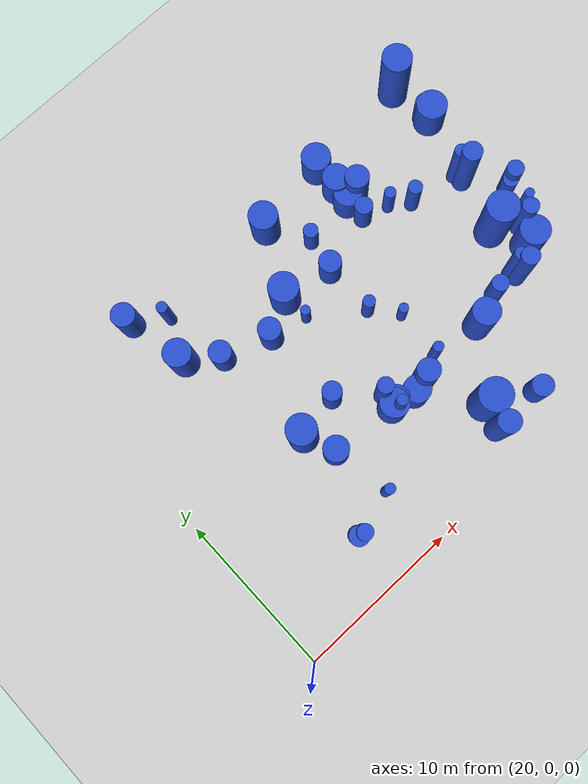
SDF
<sdf version="1.6">
 <world name="default">
  <model name="ground_plane">
   <static>1</static>
   <link name="link">
    <collision name="collision">
     <geometry><plane><normal>0 0 1</normal><size>100 100</size></plane></geometry>
     <surface><friction><ode><mu>100</mu><mu2>50</mu2></ode></friction></surface>
    </collision>
    <visual name="visual">
     <cast_shadows>0</cast_shadows>
     <geometry><plane><normal>0 0 1</normal><size>100 100</size></plane></geometry>
     <material>
      <script><uri>file://media/materials/scripts/gazebo.material</uri><name>Gazebo/Grey</name></script>
     </material>
    </visual>
   </link>
  </model>
  <model name="4">
   <static>0</static>
   <link name="link">
    <inertial>
     <mass>2</mass>
     <inertia><ixx>3.99199</ixx><ixy>0</ixy><ixz>0</ixz><iyy>3.99199</iyy><iyz>0</iyz><izz>0.466161</izz></inertia>
    </inertial>
    <collision name="collision">
     <geometry><cylinder><length>4.74905</length><radius>0.68276</radius></cylinder></geometry>
     <surface><contact><collide_without_contact>1</collide_without_contact></contact></surface>
    </collision>
    <visual name="visual">
     <geometry><cylinder><length>4.74905</length><radius>0.68276</radius></cylinder></geometry>
     <material>
      <script><uri>file://media/materials/scripts/gazebo.material</uri><name>Gazebo/Blue</name></script>
     </material>
    </visual>
    <gravity>0</gravity>
   </link>
   <pose>36.5583 2.27425 2.37452 0 -0 0</pose>
  </model>
  <model name="10">
   <static>0</static>
   <link name="link">
    <inertial>
     <mass>2</mass>
     <inertia>
      <ixx>0.892334</ixx>
      <ixy>0</ixy>
      <ixz>0</ixz>
      <iyy>0.892334</iyy>
      <iyz>0</iyz>
      <izz>0.0903005</izz>
     </inertia>
    </inertial>
    <collision name="collision">
     <geometry><cylinder><length>2.25457</length><radius>0.3005</radius></cylinder></geometry>
     <surface><contact><collide_without_contact>1</collide_without_contact></contact></surface>
    </collision>
    <visual name="visual">
     <geometry><cylinder><length>2.25457</length><radius>0.3005</radius></cylinder></geometry>
     <material>
      <script><uri>file://media/materials/scripts/gazebo.material</uri><name>Gazebo/Blue</name></script>
     </material>
    </visual>
    <gravity>0</gravity>
   </link>
   <pose>37.2761 10.9514 1.12729 0 -0 0</pose>
  </model>
  <model name="13">
   <static>0</static>
   <link name="link">
    <inertial>
     <mass>2</mass>
     <inertia><ixx>1.70434</ixx><ixy>0</ixy><ixz>0</ixz><iyy>1.70434</iyy><iyz>0</iyz><izz>0.588243</izz></inertia>
    </inertial>
    <collision name="collision">
     <geometry><cylinder><length>2.90883</length><radius>0.76697</radius></cylinder></geometry>
     <surface><contact><collide_without_contact>1</collide_without_contact></contact></surface>
    </collision>
    <visual name="visual">
     <geometry><cylinder><length>2.90883</length><radius>0.76697</radius></cylinder></geometry>
     <material>
      <script><uri>file://media/materials/scripts/gazebo.material</uri><name>Gazebo/Blue</name></script>
     </material>
    </visual>
    <gravity>0</gravity>
   </link>
   <pose>28.8619 7.69367 1.45441 0 -0 0</pose>
  </model>
  <model name="17">
   <static>0</static>
   <link name="link">
    <inertial>
     <mass>2</mass>
     <inertia><ixx>2.81626</ixx><ixy>0</ixy><ixz>0</ixz><iyy>2.81626</iyy><iyz>0</iyz><izz>0.482913</izz></inertia>
    </inertial>
    <collision name="collision">
     <geometry><cylinder><length>3.9305</length><radius>0.694919</radius></cylinder></geometry>
     <surface><contact><collide_without_contact>1</collide_without_contact></contact></surface>
    </collision>
    <visual name="visual">
     <geometry><cylinder><length>3.9305</length><radius>0.694919</radius></cylinder></geometry>
     <material>
      <script><uri>file://media/materials/scripts/gazebo.material</uri><name>Gazebo/Blue</name></script>
     </material>
    </visual>
    <gravity>0</gravity>
   </link>
   <pose>35.5044 7.28574 1.96525 0 -0 0</pose>
  </model>
  <model name="20">
   <static>0</static>
   <link name="link">
    <inertial>
     <mass>2</mass>
     <inertia><ixx>1.70834</ixx><ixy>0</ixy><ixz>0</ixz><iyy>1.70834</iyy><iyz>0</iyz><izz>0.487048</izz></inertia>
    </inertial>
    <collision name="collision">
     <geometry><cylinder><length>2.96461</length><radius>0.697888</radius></cylinder></geometry>
     <surface><contact><collide_without_contact>1</collide_without_contact></contact></surface>
    </collision>
    <visual name="visual">
     <geometry><cylinder><length>2.96461</length><radius>0.697888</radius></cylinder></geometry>
     <material>
      <script><uri>file://media/materials/scripts/gazebo.material</uri><name>Gazebo/Blue</name></script>
     </material>
    </visual>
    <gravity>0</gravity>
   </link>
   <pose>30.726 15.2064 1.4823 0 -0 0</pose>
  </model>
  <model name="22">
   <static>0</static>
   <link name="link">
    <inertial>
     <mass>2</mass>
     <inertia><ixx>1.35363</ixx><ixy>0</ixy><ixz>0</ixz><iyy>1.35363</iyy><iyz>0</iyz><izz>0.709963</izz></inertia>
    </inertial>
    <collision name="collision">
     <geometry><cylinder><length>2.44783</length><radius>0.842593</radius></cylinder></geometry>
     <surface><contact><collide_without_contact>1</collide_without_contact></contact></surface>
    </collision>
    <visual name="visual">
     <geometry><cylinder><length>2.44783</length><radius>0.842593</radius></cylinder></geometry>
     <material>
      <script><uri>file://media/materials/scripts/gazebo.material</uri><name>Gazebo/Blue</name></script>
     </material>
    </visual>
    <gravity>0</gravity>
   </link>
   <pose>39.8297 19.3697 1.22391 0 -0 0</pose>
  </model>
  <model name="33">
   <static>0</static>
   <link name="link">
    <inertial>
     <mass>2</mass>
     <inertia><ixx>3.79607</ixx><ixy>0</ixy><ixz>0</ixz><iyy>3.79607</iyy><iyz>0</iyz><izz>0.307208</izz></inertia>
    </inertial>
    <collision name="collision">
     <geometry><cylinder><length>4.67491</length><radius>0.554264</radius></cylinder></geometry>
     <surface><contact><collide_without_contact>1</collide_without_contact></contact></surface>
    </collision>
    <visual name="visual">
     <geometry><cylinder><length>4.67491</length><radius>0.554264</radius></cylinder></geometry>
     <material>
      <script><uri>file://media/materials/scripts/gazebo.material</uri><name>Gazebo/Blue</name></script>
     </material>
    </visual>
    <gravity>0</gravity>
   </link>
   <pose>43.9821 7.96842 2.33746 0 -0 0</pose>
  </model>
  <model name="34">
   <static>0</static>
   <link name="link">
    <inertial>
     <mass>2</mass>
     <inertia><ixx>2.43561</ixx><ixy>0</ixy><ixz>0</ixz><iyy>2.43561</iyy><iyz>0</iyz><izz>0.710721</izz></inertia>
    </inertial>
    <collision name="collision">
     <geometry><cylinder><length>3.53292</length><radius>0.843043</radius></cylinder></geometry>
     <surface><contact><collide_without_contact>1</collide_without_contact></contact></surface>
    </collision>
    <visual name="visual">
     <geometry><cylinder><length>3.53292</length><radius>0.843043</radius></cylinder></geometry>
     <material>
      <script><uri>file://media/materials/scripts/gazebo.material</uri><name>Gazebo/Blue</name></script>
     </material>
    </visual>
    <gravity>0</gravity>
   </link>
   <pose>25.9964 17.6182 1.76646 0 -0 0</pose>
  </model>
  <model name="37">
   <static>0</static>
   <link name="link">
    <inertial>
     <mass>2</mass>
     <inertia><ixx>4.51841</ixx><ixy>0</ixy><ixz>0</ixz><iyy>4.51841</iyy><iyz>0</iyz><izz>0.944518</izz></inertia>
    </inertial>
    <collision name="collision">
     <geometry><cylinder><length>4.92716</length><radius>0.971863</radius></cylinder></geometry>
     <surface><contact><collide_without_contact>1</collide_without_contact></contact></surface>
    </collision>
    <visual name="visual">
     <geometry><cylinder><length>4.92716</length><radius>0.971863</radius></cylinder></geometry>
     <material>
      <script><uri>file://media/materials/scripts/gazebo.material</uri><name>Gazebo/Blue</name></script>
     </material>
    </visual>
    <gravity>0</gravity>
   </link>
   <pose>44.825 11.0247 2.46358 0 -0 0</pose>
  </model>
  <model name="40">
   <static>0</static>
   <link name="link">
    <inertial>
     <mass>2</mass>
     <inertia><ixx>4.04443</ixx><ixy>0</ixy><ixz>0</ixz><iyy>4.04443</iyy><iyz>0</iyz><izz>0.995933</izz></inertia>
    </inertial>
    <collision name="collision">
     <geometry><cylinder><length>4.61289</length><radius>0.997965</radius></cylinder></geometry>
     <surface><contact><collide_without_contact>1</collide_without_contact></contact></surface>
    </collision>
    <visual name="visual">
     <geometry><cylinder><length>4.61289</length><radius>0.997965</radius></cylinder></geometry>
     <material>
      <script><uri>file://media/materials/scripts/gazebo.material</uri><name>Gazebo/Blue</name></script>
     </material>
    </visual>
    <gravity>0</gravity>
   </link>
   <pose>37.0797 3.78821 2.30645 0 -0 0</pose>
  </model>
  <model name="45">
   <static>0</static>
   <link name="link">
    <inertial>
     <mass>2</mass>
     <inertia><ixx>1.36639</ixx><ixy>0</ixy><ixz>0</ixz><iyy>1.36639</iyy><iyz>0</iyz><izz>0.427302</izz></inertia>
    </inertial>
    <collision name="collision">
     <geometry><cylinder><length>2.62991</length><radius>0.653683</radius></cylinder></geometry>
     <surface><contact><collide_without_contact>1</collide_without_contact></contact></surface>
    </collision>
    <visual name="visual">
     <geometry><cylinder><length>2.62991</length><radius>0.653683</radius></cylinder></geometry>
     <material>
      <script><uri>file://media/materials/scripts/gazebo.material</uri><name>Gazebo/Blue</name></script>
     </material>
    </visual>
    <gravity>0</gravity>
   </link>
   <pose>39.8121 2.31165 1.31496 0 -0 0</pose>
  </model>
  <model name="46">
   <static>0</static>
   <link name="link">
    <inertial>
     <mass>2</mass>
     <inertia><ixx>3.78584</ixx><ixy>0</ixy><ixz>0</ixz><iyy>3.78584</iyy><iyz>0</iyz><izz>0.112612</izz></inertia>
    </inertial>
    <collision name="collision">
     <geometry><cylinder><length>4.73045</length><radius>0.335577</radius></cylinder></geometry>
     <surface><contact><collide_without_contact>1</collide_without_contact></contact></surface>
    </collision>
    <visual name="visual">
     <geometry><cylinder><length>4.73045</length><radius>0.335577</radius></cylinder></geometry>
     <material>
      <script><uri>file://media/materials/scripts/gazebo.material</uri><name>Gazebo/Blue</name></script>
     </material>
    </visual>
    <gravity>0</gravity>
   </link>
   <pose>33.1677 7.04828 2.36523 0 -0 0</pose>
  </model>
  <model name="47">
   <static>0</static>
   <link name="link">
    <inertial>
     <mass>2</mass>
     <inertia><ixx>3.36538</ixx><ixy>0</ixy><ixz>0</ixz><iyy>3.36538</iyy><iyz>0</iyz><izz>0.233826</izz></inertia>
    </inertial>
    <collision name="collision">
     <geometry><cylinder><length>4.41484</length><radius>0.483555</radius></cylinder></geometry>
     <surface><contact><collide_without_contact>1</collide_without_contact></contact></surface>
    </collision>
    <visual name="visual">
     <geometry><cylinder><length>4.41484</length><radius>0.483555</radius></cylinder></geometry>
     <material>
      <script><uri>file://media/materials/scripts/gazebo.material</uri><name>Gazebo/Blue</name></script>
     </material>
    </visual>
    <gravity>0</gravity>
   </link>
   <pose>33.0919 8.26592 2.20742 0 -0 0</pose>
  </model>
  <model name="50">
   <static>0</static>
   <link name="link">
    <inertial>
     <mass>2</mass>
     <inertia>
      <ixx>0.992342</ixx>
      <ixy>0</ixy>
      <ixz>0</ixz>
      <iyy>0.992342</iyy>
      <iyz>0</iyz>
      <izz>0.0875629</izz>
     </inertia>
    </inertial>
    <collision name="collision">
     <geometry><cylinder><length>2.38566</length><radius>0.29591</radius></cylinder></geometry>
     <surface><contact><collide_without_contact>1</collide_without_contact></contact></surface>
    </collision>
    <visual name="visual">
     <geometry><cylinder><length>2.38566</length><radius>0.29591</radius></cylinder></geometry>
     <material>
      <script><uri>file://media/materials/scripts/gazebo.material</uri><name>Gazebo/Blue</name></script>
     </material>
    </visual>
    <gravity>0</gravity>
   </link>
   <pose>47.4918 10.8681 1.19283 0 -0 0</pose>
  </model>
  <model name="55">
   <static>0</static>
   <link name="link">
    <inertial>
     <mass>2</mass>
     <inertia><ixx>1.92255</ixx><ixy>0</ixy><ixz>0</ixz><iyy>1.92255</iyy><iyz>0</iyz><izz>0.101941</izz></inertia>
    </inertial>
    <collision name="collision">
     <geometry><cylinder><length>3.35104</length><radius>0.319282</radius></cylinder></geometry>
     <surface><contact><collide_without_contact>1</collide_without_contact></contact></surface>
    </collision>
    <visual name="visual">
     <geometry><cylinder><length>3.35104</length><radius>0.319282</radius></cylinder></geometry>
     <material>
      <script><uri>file://media/materials/scripts/gazebo.material</uri><name>Gazebo/Blue</name></script>
     </material>
    </visual>
    <gravity>0</gravity>
   </link>
   <pose>36.9158 7.90245 1.67552 0 -0 0</pose>
  </model>
  <model name="62">
   <static>0</static>
   <link name="link">
    <inertial>
     <mass>2</mass>
     <inertia><ixx>1.51598</ixx><ixy>0</ixy><ixz>0</ixz><iyy>1.51598</iyy><iyz>0</iyz><izz>0.623706</izz></inertia>
    </inertial>
    <collision name="collision">
     <geometry><cylinder><length>2.68789</length><radius>0.789751</radius></cylinder></geometry>
     <surface><contact><collide_without_contact>1</collide_without_contact></contact></surface>
    </collision>
    <visual name="visual">
     <geometry><cylinder><length>2.68789</length><radius>0.789751</radius></cylinder></geometry>
     <material>
      <script><uri>file://media/materials/scripts/gazebo.material</uri><name>Gazebo/Blue</name></script>
     </material>
    </visual>
    <gravity>0</gravity>
   </link>
   <pose>33.2636 7.46518 1.34395 0 -0 0</pose>
  </model>
  <model name="67">
   <static>0</static>
   <link name="link">
    <inertial>
     <mass>2</mass>
     <inertia><ixx>1.92986</ixx><ixy>0</ixy><ixz>0</ixz><iyy>1.92986</iyy><iyz>0</iyz><izz>0.522508</izz></inertia>
    </inertial>
    <collision name="collision">
     <geometry><cylinder><length>3.16412</length><radius>0.722847</radius></cylinder></geometry>
     <surface><contact><collide_without_contact>1</collide_without_contact></contact></surface>
    </collision>
    <visual name="visual">
     <geometry><cylinder><length>3.16412</length><radius>0.722847</radius></cylinder></geometry>
     <material>
      <script><uri>file://media/materials/scripts/gazebo.material</uri><name>Gazebo/Blue</name></script>
     </material>
    </visual>
    <gravity>0</gravity>
   </link>
   <pose>25.2068 21.443 1.58206 0 -0 0</pose>
  </model>
  <model name="71">
   <static>0</static>
   <link name="link">
    <inertial>
     <mass>2</mass>
     <inertia><ixx>1.48642</ixx><ixy>0</ixy><ixz>0</ixz><iyy>1.48642</iyy><iyz>0</iyz><izz>0.886168</izz></inertia>
    </inertial>
    <collision name="collision">
     <geometry><cylinder><length>2.50201</length><radius>0.941365</radius></cylinder></geometry>
     <surface><contact><collide_without_contact>1</collide_without_contact></contact></surface>
    </collision>
    <visual name="visual">
     <geometry><cylinder><length>2.50201</length><radius>0.941365</radius></cylinder></geometry>
     <material>
      <script><uri>file://media/materials/scripts/gazebo.material</uri><name>Gazebo/Blue</name></script>
     </material>
    </visual>
    <gravity>0</gravity>
   </link>
   <pose>47.1391 18.75 1.251 0 -0 0</pose>
  </model>
  <model name="77">
   <static>0</static>
   <link name="link">
    <inertial>
     <mass>2</mass>
     <inertia><ixx>2.23167</ixx><ixy>0</ixy><ixz>0</ixz><iyy>2.23167</iyy><iyz>0</iyz><izz>0.266125</izz></inertia>
    </inertial>
    <collision name="collision">
     <geometry><cylinder><length>3.54847</length><radius>0.515873</radius></cylinder></geometry>
     <surface><contact><collide_without_contact>1</collide_without_contact></contact></surface>
    </collision>
    <visual name="visual">
     <geometry><cylinder><length>3.54847</length><radius>0.515873</radius></cylinder></geometry>
     <material>
      <script><uri>file://media/materials/scripts/gazebo.material</uri><name>Gazebo/Blue</name></script>
     </material>
    </visual>
    <gravity>0</gravity>
   </link>
   <pose>47.4817 12.3314 1.77423 0 -0 0</pose>
  </model>
  <model name="84">
   <static>0</static>
   <link name="link">
    <inertial>
     <mass>2</mass>
     <inertia><ixx>1.69422</ixx><ixy>0</ixy><ixz>0</ixz><iyy>1.69422</iyy><iyz>0</iyz><izz>0.186566</izz></inertia>
    </inertial>
    <collision name="collision">
     <geometry><cylinder><length>3.09929</length><radius>0.431933</radius></cylinder></geometry>
     <surface><contact><collide_without_contact>1</collide_without_contact></contact></surface>
    </collision>
    <visual name="visual">
     <geometry><cylinder><length>3.09929</length><radius>0.431933</radius></cylinder></geometry>
     <material>
      <script><uri>file://media/materials/scripts/gazebo.material</uri><name>Gazebo/Blue</name></script>
     </material>
    </visual>
    <gravity>0</gravity>
   </link>
   <pose>42.5989 15.5785 1.54964 0 -0 0</pose>
  </model>
  <model name="86">
   <static>0</static>
   <link name="link">
    <inertial>
     <mass>2</mass>
     <inertia><ixx>1.2636</ixx><ixy>0</ixy><ixz>0</ixz><iyy>1.2636</iyy><iyz>0</iyz><izz>0.128524</izz></inertia>
    </inertial>
    <collision name="collision">
     <geometry><cylinder><length>2.68254</length><radius>0.358502</radius></cylinder></geometry>
     <surface><contact><collide_without_contact>1</collide_without_contact></contact></surface>
    </collision>
    <visual name="visual">
     <geometry><cylinder><length>2.68254</length><radius>0.358502</radius></cylinder></geometry>
     <material>
      <script><uri>file://media/materials/scripts/gazebo.material</uri><name>Gazebo/Blue</name></script>
     </material>
    </visual>
    <gravity>0</gravity>
   </link>
   <pose>41.425 16.4363 1.34127 0 -0 0</pose>
  </model>
  <model name="91">
   <static>0</static>
   <link name="link">
    <inertial>
     <mass>2</mass>
     <inertia><ixx>1.81304</ixx><ixy>0</ixy><ixz>0</ixz><iyy>1.81304</iyy><iyz>0</iyz><izz>0.779024</izz></inertia>
    </inertial>
    <collision name="collision">
     <geometry><cylinder><length>2.92252</length><radius>0.882623</radius></cylinder></geometry>
     <surface><contact><collide_without_contact>1</collide_without_contact></contact></surface>
    </collision>
    <visual name="visual">
     <geometry><cylinder><length>2.92252</length><radius>0.882623</radius></cylinder></geometry>
     <material>
      <script><uri>file://media/materials/scripts/gazebo.material</uri><name>Gazebo/Blue</name></script>
     </material>
    </visual>
    <gravity>0</gravity>
   </link>
   <pose>33.0012 7.31811 1.46126 0 -0 0</pose>
  </model>
  <model name="99">
   <static>0</static>
   <link name="link">
    <inertial>
     <mass>2</mass>
     <inertia><ixx>3.32285</ixx><ixy>0</ixy><ixz>0</ixz><iyy>3.32285</iyy><iyz>0</iyz><izz>0.693865</izz></inertia>
    </inertial>
    <collision name="collision">
     <geometry><cylinder><length>4.22557</length><radius>0.832985</radius></cylinder></geometry>
     <surface><contact><collide_without_contact>1</collide_without_contact></contact></surface>
    </collision>
    <visual name="visual">
     <geometry><cylinder><length>4.22557</length><radius>0.832985</radius></cylinder></geometry>
     <material>
      <script><uri>file://media/materials/scripts/gazebo.material</uri><name>Gazebo/Blue</name></script>
     </material>
    </visual>
    <gravity>0</gravity>
   </link>
   <pose>40.0849 7.42865 2.11279 0 -0 0</pose>
  </model>
  <model name="101">
   <static>0</static>
   <link name="link">
    <inertial>
     <mass>2</mass>
     <inertia>
      <ixx>0.931998</ixx>
      <ixy>0</ixy>
      <ixz>0</ixz>
      <iyy>0.931998</iyy>
      <iyz>0</iyz>
      <izz>0.0897076</izz>
     </inertia>
    </inertial>
    <collision name="collision">
     <geometry><cylinder><length>2.30713</length><radius>0.299512</radius></cylinder></geometry>
     <surface><contact><collide_without_contact>1</collide_without_contact></contact></surface>
    </collision>
    <visual name="visual">
     <geometry><cylinder><length>2.30713</length><radius>0.299512</radius></cylinder></geometry>
     <material>
      <script><uri>file://media/materials/scripts/gazebo.material</uri><name>Gazebo/Blue</name></script>
     </material>
    </visual>
    <gravity>0</gravity>
   </link>
   <pose>33.0448 14.7316 1.15357 0 -0 0</pose>
  </model>
  <model name="102">
   <static>0</static>
   <link name="link">
    <inertial>
     <mass>2</mass>
     <inertia><ixx>3.95692</ixx><ixy>0</ixy><ixz>0</ixz><iyy>3.95692</iyy><iyz>0</iyz><izz>0.21991</izz></inertia>
    </inertial>
    <collision name="collision">
     <geometry><cylinder><length>4.80435</length><radius>0.468946</radius></cylinder></geometry>
     <surface><contact><collide_without_contact>1</collide_without_contact></contact></surface>
    </collision>
    <visual name="visual">
     <geometry><cylinder><length>4.80435</length><radius>0.468946</radius></cylinder></geometry>
     <material>
      <script><uri>file://media/materials/scripts/gazebo.material</uri><name>Gazebo/Blue</name></script>
     </material>
    </visual>
    <gravity>0</gravity>
   </link>
   <pose>26.8728 3.3592 2.40217 0 -0 0</pose>
  </model>
  <model name="105">
   <static>0</static>
   <link name="link">
    <inertial>
     <mass>2</mass>
     <inertia><ixx>3.18059</ixx><ixy>0</ixy><ixz>0</ixz><iyy>3.18059</iyy><iyz>0</iyz><izz>0.147902</izz></inertia>
    </inertial>
    <collision name="collision">
     <geometry><cylinder><length>4.31739</length><radius>0.384581</radius></cylinder></geometry>
     <surface><contact><collide_without_contact>1</collide_without_contact></contact></surface>
    </collision>
    <visual name="visual">
     <geometry><cylinder><length>4.31739</length><radius>0.384581</radius></cylinder></geometry>
     <material>
      <script><uri>file://media/materials/scripts/gazebo.material</uri><name>Gazebo/Blue</name></script>
     </material>
    </visual>
    <gravity>0</gravity>
   </link>
   <pose>43.8154 8.45253 2.15869 0 -0 0</pose>
  </model>
  <model name="106">
   <static>0</static>
   <link name="link">
    <inertial>
     <mass>2</mass>
     <inertia><ixx>1.19386</ixx><ixy>0</ixy><ixz>0</ixz><iyy>1.19386</iyy><iyz>0</iyz><izz>0.72502</izz></inertia>
    </inertial>
    <collision name="collision">
     <geometry><cylinder><length>2.23341</length><radius>0.851481</radius></cylinder></geometry>
     <surface><contact><collide_without_contact>1</collide_without_contact></contact></surface>
    </collision>
    <visual name="visual">
     <geometry><cylinder><length>2.23341</length><radius>0.851481</radius></cylinder></geometry>
     <material>
      <script><uri>file://media/materials/scripts/gazebo.material</uri><name>Gazebo/Blue</name></script>
     </material>
    </visual>
    <gravity>0</gravity>
   </link>
   <pose>39.7044 18.2429 1.1167 0 -0 0</pose>
  </model>
  <model name="112">
   <static>0</static>
   <link name="link">
    <inertial>
     <mass>2</mass>
     <inertia><ixx>3.3803</ixx><ixy>0</ixy><ixz>0</ixz><iyy>3.3803</iyy><iyz>0</iyz><izz>0.0999277</izz></inertia>
    </inertial>
    <collision name="collision">
     <geometry><cylinder><length>4.47013</length><radius>0.316113</radius></cylinder></geometry>
     <surface><contact><collide_without_contact>1</collide_without_contact></contact></surface>
    </collision>
    <visual name="visual">
     <geometry><cylinder><length>4.47013</length><radius>0.316113</radius></cylinder></geometry>
     <material>
      <script><uri>file://media/materials/scripts/gazebo.material</uri><name>Gazebo/Blue</name></script>
     </material>
    </visual>
    <gravity>0</gravity>
   </link>
   <pose>29.4086 4.09271 2.23506 0 -0 0</pose>
  </model>
  <model name="114">
   <static>0</static>
   <link name="link">
    <inertial>
     <mass>2</mass>
     <inertia><ixx>4.50475</ixx><ixy>0</ixy><ixz>0</ixz><iyy>4.50475</iyy><iyz>0</iyz><izz>0.798311</izz></inertia>
    </inertial>
    <collision name="collision">
     <geometry><cylinder><length>4.96322</length><radius>0.893483</radius></cylinder></geometry>
     <surface><contact><collide_without_contact>1</collide_without_contact></contact></surface>
    </collision>
    <visual name="visual">
     <geometry><cylinder><length>4.96322</length><radius>0.893483</radius></cylinder></geometry>
     <material>
      <script><uri>file://media/materials/scripts/gazebo.material</uri><name>Gazebo/Blue</name></script>
     </material>
    </visual>
    <gravity>0</gravity>
   </link>
   <pose>28.0834 9.5925 2.48161 0 -0 0</pose>
  </model>
  <model name="117">
   <static>0</static>
   <link name="link">
    <inertial>
     <mass>2</mass>
     <inertia><ixx>1.92344</ixx><ixy>0</ixy><ixz>0</ixz><iyy>1.92344</iyy><iyz>0</iyz><izz>0.539178</izz></inertia>
    </inertial>
    <collision name="collision">
     <geometry><cylinder><length>3.1501</length><radius>0.734287</radius></cylinder></geometry>
     <surface><contact><collide_without_contact>1</collide_without_contact></contact></surface>
    </collision>
    <visual name="visual">
     <geometry><cylinder><length>3.1501</length><radius>0.734287</radius></cylinder></geometry>
     <material>
      <script><uri>file://media/materials/scripts/gazebo.material</uri><name>Gazebo/Blue</name></script>
     </material>
    </visual>
    <gravity>0</gravity>
   </link>
   <pose>40.5549 18.3525 1.57505 0 -0 0</pose>
  </model>
  <model name="121">
   <static>0</static>
   <link name="link">
    <inertial>
     <mass>2</mass>
     <inertia><ixx>4.1766</ixx><ixy>0</ixy><ixz>0</ixz><iyy>4.1766</iyy><iyz>0</iyz><izz>0.356633</izz></inertia>
    </inertial>
    <collision name="collision">
     <geometry><cylinder><length>4.89793</length><radius>0.597187</radius></cylinder></geometry>
     <surface><contact><collide_without_contact>1</collide_without_contact></contact></surface>
    </collision>
    <visual name="visual">
     <geometry><cylinder><length>4.89793</length><radius>0.597187</radius></cylinder></geometry>
     <material>
      <script><uri>file://media/materials/scripts/gazebo.material</uri><name>Gazebo/Blue</name></script>
     </material>
    </visual>
    <gravity>0</gravity>
   </link>
   <pose>45.871 14.5136 2.44896 0 -0 0</pose>
  </model>
  <model name="128">
   <static>0</static>
   <link name="link">
    <inertial>
     <mass>2</mass>
     <inertia>
      <ixx>0.991401</ixx>
      <ixy>0</ixy>
      <ixz>0</ixz>
      <iyy>0.991401</iyy>
      <iyz>0</iyz>
      <izz>0.585978</izz>
     </inertia>
    </inertial>
    <collision name="collision">
     <geometry><cylinder><length>2.04706</length><radius>0.765492</radius></cylinder></geometry>
     <surface><contact><collide_without_contact>1</collide_without_contact></contact></surface>
    </collision>
    <visual name="visual">
     <geometry><cylinder><length>2.04706</length><radius>0.765492</radius></cylinder></geometry>
     <material>
      <script><uri>file://media/materials/scripts/gazebo.material</uri><name>Gazebo/Blue</name></script>
     </material>
    </visual>
    <gravity>0</gravity>
   </link>
   <pose>47.1565 19.0948 1.02353 0 -0 0</pose>
  </model>
  <model name="146">
   <static>0</static>
   <link name="link">
    <inertial>
     <mass>2</mass>
     <inertia><ixx>2.02122</ixx><ixy>0</ixy><ixz>0</ixz><iyy>2.02122</iyy><iyz>0</iyz><izz>0.786056</izz></inertia>
    </inertial>
    <collision name="collision">
     <geometry><cylinder><length>3.12556</length><radius>0.886598</radius></cylinder></geometry>
     <surface><contact><collide_without_contact>1</collide_without_contact></contact></surface>
    </collision>
    <visual name="visual">
     <geometry><cylinder><length>3.12556</length><radius>0.886598</radius></cylinder></geometry>
     <material>
      <script><uri>file://media/materials/scripts/gazebo.material</uri><name>Gazebo/Blue</name></script>
     </material>
    </visual>
    <gravity>0</gravity>
   </link>
   <pose>34.9653 20.3721 1.56278 0 -0 0</pose>
  </model>
  <model name="147">
   <static>0</static>
   <link name="link">
    <inertial>
     <mass>2</mass>
     <inertia><ixx>2.18693</ixx><ixy>0</ixy><ixz>0</ixz><iyy>2.18693</iyy><iyz>0</iyz><izz>0.85686</izz></inertia>
    </inertial>
    <collision name="collision">
     <geometry><cylinder><length>3.24823</length><radius>0.925667</radius></cylinder></geometry>
     <surface><contact><collide_without_contact>1</collide_without_contact></contact></surface>
    </collision>
    <visual name="visual">
     <geometry><cylinder><length>3.24823</length><radius>0.925667</radius></cylinder></geometry>
     <material>
      <script><uri>file://media/materials/scripts/gazebo.material</uri><name>Gazebo/Blue</name></script>
     </material>
    </visual>
    <gravity>0</gravity>
   </link>
   <pose>45.791 8.96886 1.62412 0 -0 0</pose>
  </model>
  <model name="148">
   <static>0</static>
   <link name="link">
    <inertial>
     <mass>2</mass>
     <inertia><ixx>1.3282</ixx><ixy>0</ixy><ixz>0</ixz><iyy>1.3282</iyy><iyz>0</iyz><izz>0.144223</izz></inertia>
    </inertial>
    <collision name="collision">
     <geometry><cylinder><length>2.74527</length><radius>0.379767</radius></cylinder></geometry>
     <surface><contact><collide_without_contact>1</collide_without_contact></contact></surface>
    </collision>
    <visual name="visual">
     <geometry><cylinder><length>2.74527</length><radius>0.379767</radius></cylinder></geometry>
     <material>
      <script><uri>file://media/materials/scripts/gazebo.material</uri><name>Gazebo/Blue</name></script>
     </material>
    </visual>
    <gravity>0</gravity>
   </link>
   <pose>36.0032 12.5367 1.37264 0 -0 0</pose>
  </model>
  <model name="151">
   <static>0</static>
   <link name="link">
    <inertial>
     <mass>2</mass>
     <inertia><ixx>1.37552</ixx><ixy>0</ixy><ixz>0</ixz><iyy>1.37552</iyy><iyz>0</iyz><izz>0.680923</izz></inertia>
    </inertial>
    <collision name="collision">
     <geometry><cylinder><length>2.49206</length><radius>0.82518</radius></cylinder></geometry>
     <surface><contact><collide_without_contact>1</collide_without_contact></contact></surface>
    </collision>
    <visual name="visual">
     <geometry><cylinder><length>2.49206</length><radius>0.82518</radius></cylinder></geometry>
     <material>
      <script><uri>file://media/materials/scripts/gazebo.material</uri><name>Gazebo/Blue</name></script>
     </material>
    </visual>
    <gravity>0</gravity>
   </link>
   <pose>34.5375 7.01916 1.24603 0 -0 0</pose>
  </model>
  <model name="162">
   <static>0</static>
   <link name="link">
    <inertial>
     <mass>2</mass>
     <inertia><ixx>2.4475</ixx><ixy>0</ixy><ixz>0</ixz><iyy>2.4475</iyy><iyz>0</iyz><izz>0.34297</izz></inertia>
    </inertial>
    <collision name="collision">
     <geometry><cylinder><length>3.69542</length><radius>0.585636</radius></cylinder></geometry>
     <surface><contact><collide_without_contact>1</collide_without_contact></contact></surface>
    </collision>
    <visual name="visual">
     <geometry><cylinder><length>3.69542</length><radius>0.585636</radius></cylinder></geometry>
     <material>
      <script><uri>file://media/materials/scripts/gazebo.material</uri><name>Gazebo/Blue</name></script>
     </material>
    </visual>
    <gravity>0</gravity>
   </link>
   <pose>26.54 3.40689 1.84771 0 -0 0</pose>
  </model>
  <model name="169">
   <static>0</static>
   <link name="link">
    <inertial>
     <mass>2</mass>
     <inertia><ixx>1.56247</ixx><ixy>0</ixy><ixz>0</ixz><iyy>1.56247</iyy><iyz>0</iyz><izz>0.271395</izz></inertia>
    </inertial>
    <collision name="collision">
     <geometry><cylinder><length>2.92585</length><radius>0.520956</radius></cylinder></geometry>
     <surface><contact><collide_without_contact>1</collide_without_contact></contact></surface>
    </collision>
    <visual name="visual">
     <geometry><cylinder><length>2.92585</length><radius>0.520956</radius></cylinder></geometry>
     <material>
      <script><uri>file://media/materials/scripts/gazebo.material</uri><name>Gazebo/Blue</name></script>
     </material>
    </visual>
    <gravity>0</gravity>
   </link>
   <pose>42.1928 8.1323 1.46293 0 -0 0</pose>
  </model>
  <model name="183">
   <static>0</static>
   <link name="link">
    <inertial>
     <mass>2</mass>
     <inertia><ixx>1.46474</ixx><ixy>0</ixy><ixz>0</ixz><iyy>1.46474</iyy><iyz>0</iyz><izz>0.213854</izz></inertia>
    </inertial>
    <collision name="collision">
     <geometry><cylinder><length>2.85428</length><radius>0.462444</radius></cylinder></geometry>
     <surface><contact><collide_without_contact>1</collide_without_contact></contact></surface>
    </collision>
    <visual name="visual">
     <geometry><cylinder><length>2.85428</length><radius>0.462444</radius></cylinder></geometry>
     <material>
      <script><uri>file://media/materials/scripts/gazebo.material</uri><name>Gazebo/Blue</name></script>
     </material>
    </visual>
    <gravity>0</gravity>
   </link>
   <pose>47.0695 12.1406 1.42714 0 -0 0</pose>
  </model>
  <model name="185">
   <static>0</static>
   <link name="link">
    <inertial>
     <mass>2</mass>
     <inertia><ixx>1.36438</ixx><ixy>0</ixy><ixz>0</ixz><iyy>1.36438</iyy><iyz>0</iyz><izz>0.802086</izz></inertia>
    </inertial>
    <collision name="collision">
     <geometry><cylinder><length>2.40416</length><radius>0.895593</radius></cylinder></geometry>
     <surface><contact><collide_without_contact>1</collide_without_contact></contact></surface>
    </collision>
    <visual name="visual">
     <geometry><cylinder><length>2.40416</length><radius>0.895593</radius></cylinder></geometry>
     <material>
      <script><uri>file://media/materials/scripts/gazebo.material</uri><name>Gazebo/Blue</name></script>
     </material>
    </visual>
    <gravity>0</gravity>
   </link>
   <pose>39.8308 21.1172 1.20208 0 -0 0</pose>
  </model>
  <model name="190">
   <static>0</static>
   <link name="link">
    <inertial>
     <mass>2</mass>
     <inertia><ixx>2.8447</ixx><ixy>0</ixy><ixz>0</ixz><iyy>2.8447</iyy><iyz>0</iyz><izz>0.258092</izz></inertia>
    </inertial>
    <collision name="collision">
     <geometry><cylinder><length>4.03658</length><radius>0.508028</radius></cylinder></geometry>
     <surface><contact><collide_without_contact>1</collide_without_contact></contact></surface>
    </collision>
    <visual name="visual">
     <geometry><cylinder><length>4.03658</length><radius>0.508028</radius></cylinder></geometry>
     <material>
      <script><uri>file://media/materials/scripts/gazebo.material</uri><name>Gazebo/Blue</name></script>
     </material>
    </visual>
    <gravity>0</gravity>
   </link>
   <pose>46.3264 10.0792 2.01829 0 -0 0</pose>
  </model>
  <model name="196">
   <static>0</static>
   <link name="link">
    <inertial>
     <mass>2</mass>
     <inertia><ixx>2.9976</ixx><ixy>0</ixy><ixz>0</ixz><iyy>2.9976</iyy><iyz>0</iyz><izz>0.168273</izz></inertia>
    </inertial>
    <collision name="collision">
     <geometry><cylinder><length>4.181</length><radius>0.410211</radius></cylinder></geometry>
     <surface><contact><collide_without_contact>1</collide_without_contact></contact></surface>
    </collision>
    <visual name="visual">
     <geometry><cylinder><length>4.181</length><radius>0.410211</radius></cylinder></geometry>
     <material>
      <script><uri>file://media/materials/scripts/gazebo.material</uri><name>Gazebo/Blue</name></script>
     </material>
    </visual>
    <gravity>0</gravity>
   </link>
   <pose>45.7183 15.1108 2.0905 0 -0 0</pose>
  </model>
  <model name="205">
   <static>0</static>
   <link name="link">
    <inertial>
     <mass>2</mass>
     <inertia><ixx>1.39966</ixx><ixy>0</ixy><ixz>0</ixz><iyy>1.39966</iyy><iyz>0</iyz><izz>0.466148</izz></inertia>
    </inertial>
    <collision name="collision">
     <geometry><cylinder><length>2.64567</length><radius>0.68275</radius></cylinder></geometry>
     <surface><contact><collide_without_contact>1</collide_without_contact></contact></surface>
    </collision>
    <visual name="visual">
     <geometry><cylinder><length>2.64567</length><radius>0.68275</radius></cylinder></geometry>
     <material>
      <script><uri>file://media/materials/scripts/gazebo.material</uri><name>Gazebo/Blue</name></script>
     </material>
    </visual>
    <gravity>0</gravity>
   </link>
   <pose>36.006 15.8066 1.32283 0 -0 0</pose>
  </model>
  <model name="208">
   <static>0</static>
   <link name="link">
    <inertial>
     <mass>2</mass>
     <inertia><ixx>1.46397</ixx><ixy>0</ixy><ixz>0</ixz><iyy>1.46397</iyy><iyz>0</iyz><izz>0.473892</izz></inertia>
    </inertial>
    <collision name="collision">
     <geometry><cylinder><length>2.71333</length><radius>0.688398</radius></cylinder></geometry>
     <surface><contact><collide_without_contact>1</collide_without_contact></contact></surface>
    </collision>
    <visual name="visual">
     <geometry><cylinder><length>2.71333</length><radius>0.688398</radius></cylinder></geometry>
     <material>
      <script><uri>file://media/materials/scripts/gazebo.material</uri><name>Gazebo/Blue</name></script>
     </material>
    </visual>
    <gravity>0</gravity>
   </link>
   <pose>27.8096 16.1952 1.35667 0 -0 0</pose>
  </model>
  <model name="211">
   <static>0</static>
   <link name="link">
    <inertial>
     <mass>2</mass>
     <inertia><ixx>1.23461</ixx><ixy>0</ixy><ixz>0</ixz><iyy>1.23461</iyy><iyz>0</iyz><izz>0.299892</izz></inertia>
    </inertial>
    <collision name="collision">
     <geometry><cylinder><length>2.55107</length><radius>0.547624</radius></cylinder></geometry>
     <surface><contact><collide_without_contact>1</collide_without_contact></contact></surface>
    </collision>
    <visual name="visual">
     <geometry><cylinder><length>2.55107</length><radius>0.547624</radius></cylinder></geometry>
     <material>
      <script><uri>file://media/materials/scripts/gazebo.material</uri><name>Gazebo/Blue</name></script>
     </material>
    </visual>
    <gravity>0</gravity>
   </link>
   <pose>39.7834 16.9449 1.27554 0 -0 0</pose>
  </model>
  <model name="223">
   <static>0</static>
   <link name="link">
    <inertial>
     <mass>2</mass>
     <inertia><ixx>2.21904</ixx><ixy>0</ixy><ixz>0</ixz><iyy>2.21904</iyy><iyz>0</iyz><izz>0.848095</izz></inertia>
    </inertial>
    <collision name="collision">
     <geometry><cylinder><length>3.28177</length><radius>0.920921</radius></cylinder></geometry>
     <surface><contact><collide_without_contact>1</collide_without_contact></contact></surface>
    </collision>
    <visual name="visual">
     <geometry><cylinder><length>3.28177</length><radius>0.920921</radius></cylinder></geometry>
     <material>
      <script><uri>file://media/materials/scripts/gazebo.material</uri><name>Gazebo/Blue</name></script>
     </material>
    </visual>
    <gravity>0</gravity>
   </link>
   <pose>32.9111 16.3928 1.64088 0 -0 0</pose>
  </model>
  <model name="224">
   <static>0</static>
   <link name="link">
    <inertial>
     <mass>2</mass>
     <inertia><ixx>4.17367</ixx><ixy>0</ixy><ixz>0</ixz><iyy>4.17367</iyy><iyz>0</iyz><izz>0.821314</izz></inertia>
    </inertial>
    <collision name="collision">
     <geometry><cylinder><length>4.75164</length><radius>0.906264</radius></cylinder></geometry>
     <surface><contact><collide_without_contact>1</collide_without_contact></contact></surface>
    </collision>
    <visual name="visual">
     <geometry><cylinder><length>4.75164</length><radius>0.906264</radius></cylinder></geometry>
     <material>
      <script><uri>file://media/materials/scripts/gazebo.material</uri><name>Gazebo/Blue</name></script>
     </material>
    </visual>
    <gravity>0</gravity>
   </link>
   <pose>46.7808 21.5998 2.37582 0 -0 0</pose>
  </model>
  <model name="233">
   <static>0</static>
   <link name="link">
    <inertial>
     <mass>2</mass>
     <inertia><ixx>1.10912</ixx><ixy>0</ixy><ixz>0</ixz><iyy>1.10912</iyy><iyz>0</iyz><izz>0.203716</izz></inertia>
    </inertial>
    <collision name="collision">
     <geometry><cylinder><length>2.45836</length><radius>0.451349</radius></cylinder></geometry>
     <surface><contact><collide_without_contact>1</collide_without_contact></contact></surface>
    </collision>
    <visual name="visual">
     <geometry><cylinder><length>2.45836</length><radius>0.451349</radius></cylinder></geometry>
     <material>
      <script><uri>file://media/materials/scripts/gazebo.material</uri><name>Gazebo/Blue</name></script>
     </material>
    </visual>
    <gravity>0</gravity>
   </link>
   <pose>36.4867 17.9795 1.22918 0 -0 0</pose>
  </model>
  <model name="238">
   <static>0</static>
   <link name="link">
    <inertial>
     <mass>2</mass>
     <inertia><ixx>2.01822</ixx><ixy>0</ixy><ixz>0</ixz><iyy>2.01822</iyy><iyz>0</iyz><izz>0.113339</izz></inertia>
    </inertial>
    <collision name="collision">
     <geometry><cylinder><length>3.43065</length><radius>0.336659</radius></cylinder></geometry>
     <surface><contact><collide_without_contact>1</collide_without_contact></contact></surface>
    </collision>
    <visual name="visual">
     <geometry><cylinder><length>3.43065</length><radius>0.336659</radius></cylinder></geometry>
     <material>
      <script><uri>file://media/materials/scripts/gazebo.material</uri><name>Gazebo/Blue</name></script>
     </material>
    </visual>
    <gravity>0</gravity>
   </link>
   <pose>27.1013 20.1795 1.71532 0 -0 0</pose>
  </model>
  <model name="244">
   <static>0</static>
   <link name="link">
    <inertial>
     <mass>2</mass>
     <inertia><ixx>2.34129</ixx><ixy>0</ixy><ixz>0</ixz><iyy>2.34129</iyy><iyz>0</iyz><izz>0.33506</izz></inertia>
    </inertial>
    <collision name="collision">
     <geometry><cylinder><length>3.61145</length><radius>0.578844</radius></cylinder></geometry>
     <surface><contact><collide_without_contact>1</collide_without_contact></contact></surface>
    </collision>
    <visual name="visual">
     <geometry><cylinder><length>3.61145</length><radius>0.578844</radius></cylinder></geometry>
     <material>
      <script><uri>file://media/materials/scripts/gazebo.material</uri><name>Gazebo/Blue</name></script>
     </material>
    </visual>
    <gravity>0</gravity>
   </link>
   <pose>30.8207 10.1139 1.80572 0 -0 0</pose>
  </model>
 </world>
</sdf>
